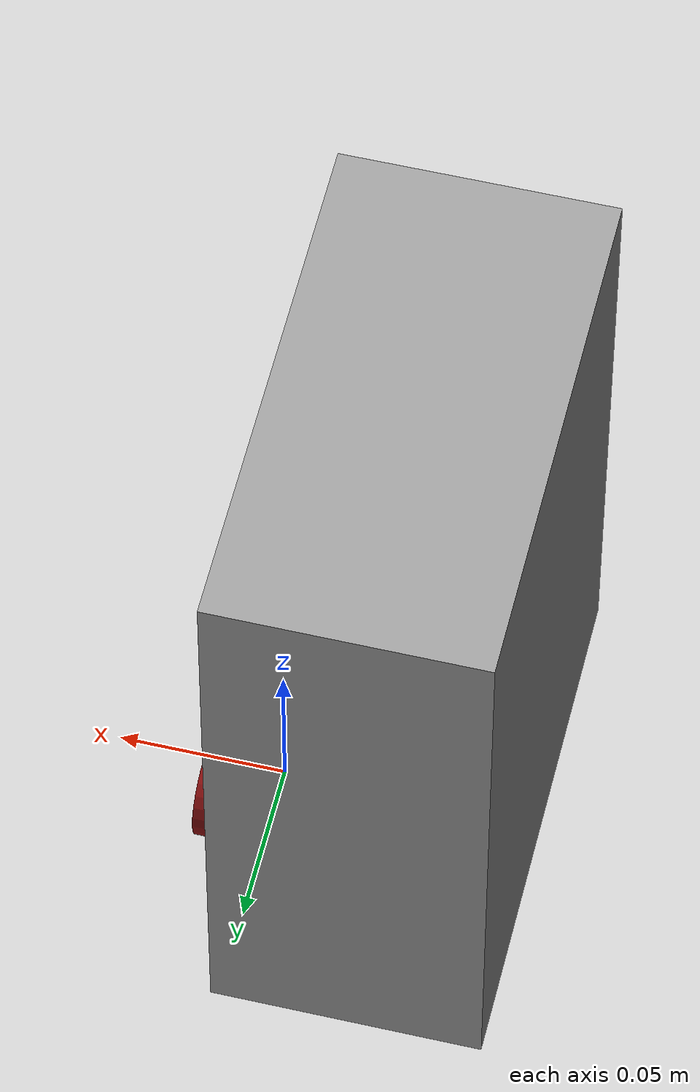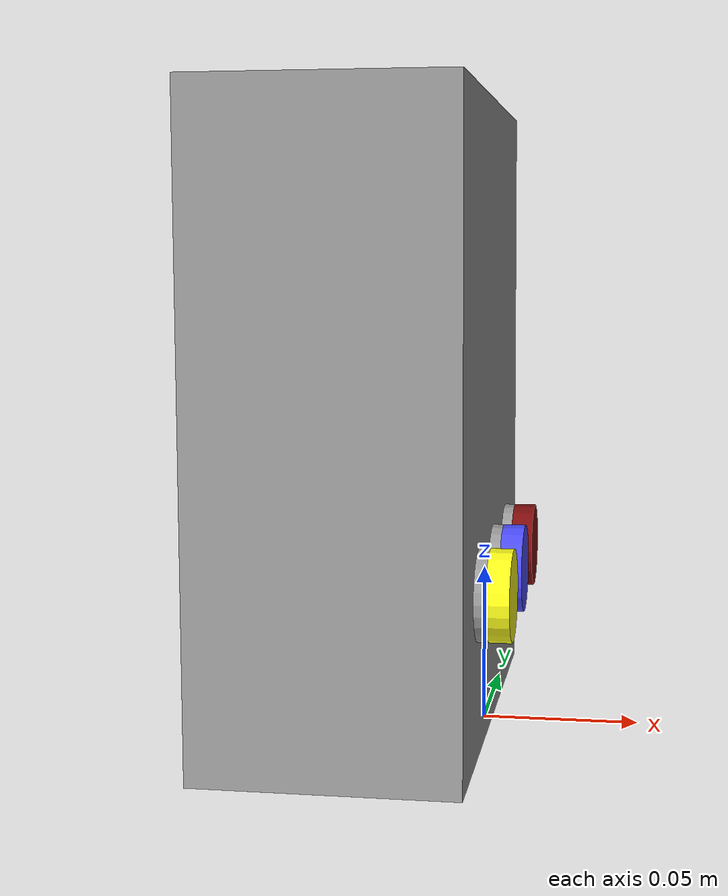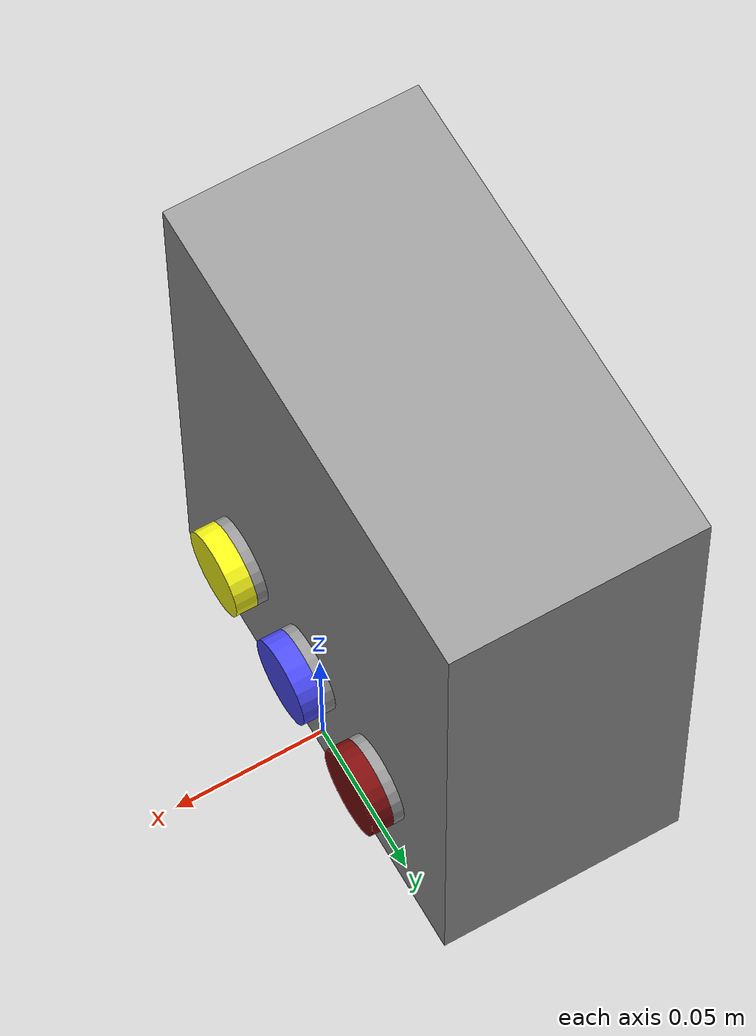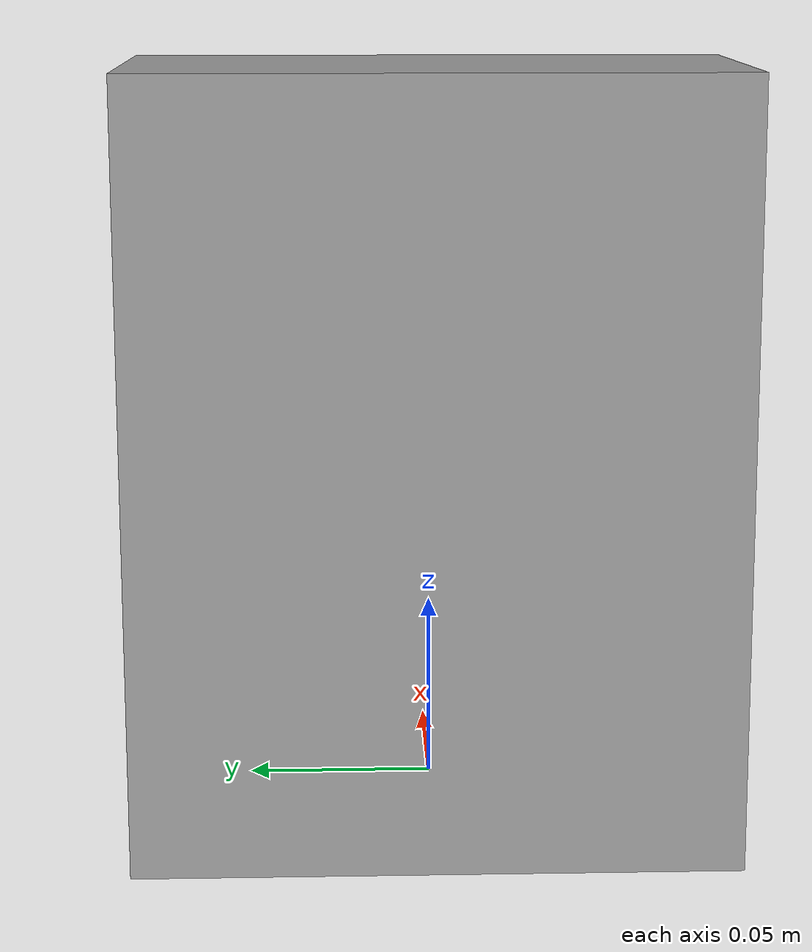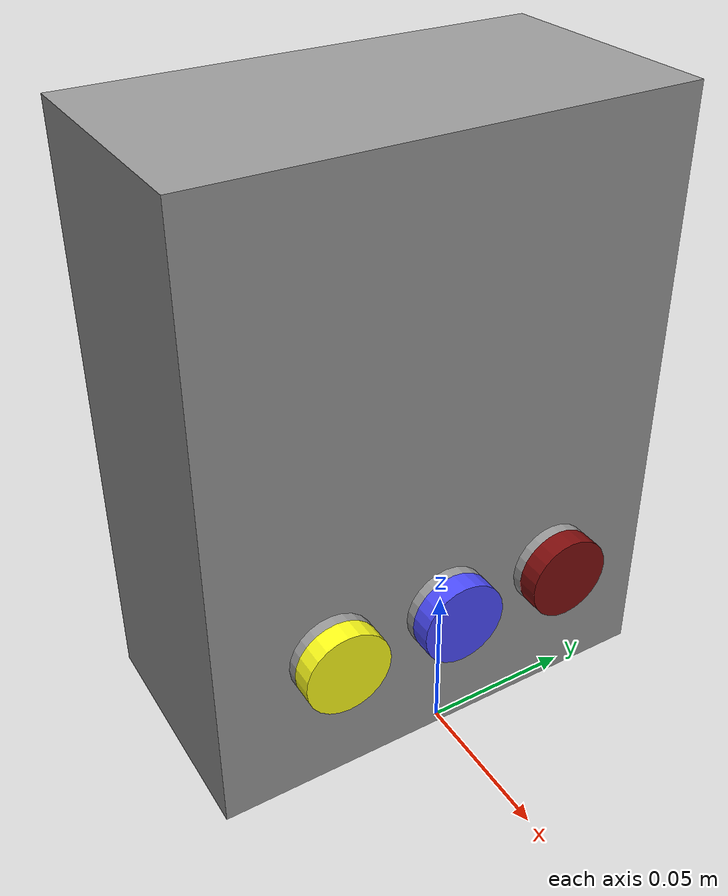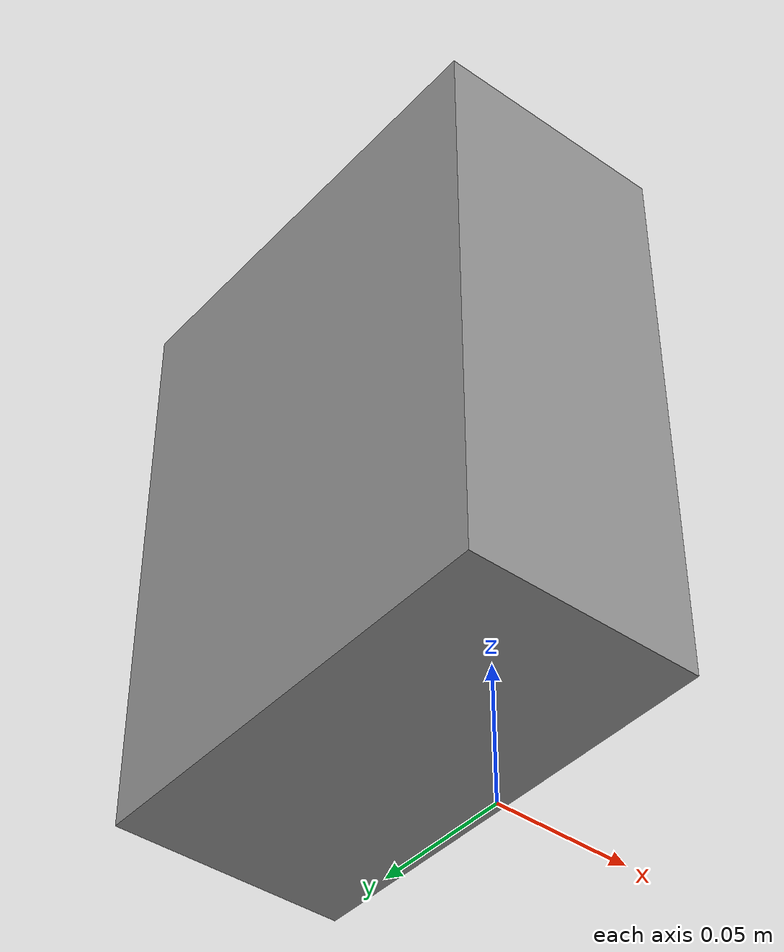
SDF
<?xml version='1.0'?>
<sdf version='1.6'>
  <model name='tc6_sensor_box'>
    <link name='box'>
      <inertial>
        <mass>2.914</mass>
        <inertia>
          <ixx>0.0155474</ixx>
          <ixy>0</ixy>
          <ixz>0</ixz>
          <iyy>0.0112675</iyy>
          <iyz>0</iyz>
          <izz>0.0073882</izz>
        </inertia>
      </inertial>
      <pose frame=''>-0.037286 0 0.1 0 -0 0</pose>
      <visual name='visual'>
        <geometry>
          <box>
            <size>0.08 0.155 0.2</size>
          </box>
        </geometry>
        <material>
          <lighting>1</lighting>
          <script>
            <uri>file://media/materials/scripts/gazebo.material</uri>
            <name>Gazebo/Grey</name>
          </script>
          <shader type='vertex'>
            <normal_map>__default__</normal_map>
          </shader>
          <ambient>0.194 0.187 0.169 1</ambient>
          <diffuse>0.7 0.7 0.7 1</diffuse>
          <specular>0.01 0.01 0.01 1</specular>
          <emissive>0 0 0 1</emissive>
        </material>
        <transparency>0</transparency>
        <cast_shadows>1</cast_shadows>
      </visual>
      <collision name='collision'>
        <geometry>
          <box>
            <size>0.08 0.155 0.2</size>
          </box>
        </geometry>
      </collision>
    </link>
    <link name='pilot_lamp_blue'>
      <inertial>
        <mass>0.0434105</mass>
        <inertia>
          <ixx>9.32e-06</ixx>
          <ixy>0</ixy>
          <ixz>0</ixz>
          <iyy>9.32e-06</iyy>
          <iyz>0</iyz>
          <izz>1.702e-05</izz>
        </inertia>
      </inertial>
      <pose frame=''>0.009714 0 0.05 -3.14159 1.57 -3.14159</pose>
      <visual name='visual'>
        <geometry>
          <cylinder>
            <radius>0.014</radius>
            <length>0.007</length>
          </cylinder>
        </geometry>
        <material>
          <lighting>1</lighting>
          <script>
            <uri>file://media/materials/scripts/gazebo.material</uri>
            <name>Gazebo/Grey</name>
          </script>
          <shader type='vertex'>
            <normal_map>__default__</normal_map>
          </shader>
          <ambient>0 0 1 1</ambient>
          <diffuse>0.3 0.3 1 1</diffuse>
          <specular>0.01 0.01 0.01 1</specular>
          <emissive>0 0 0 1</emissive>
        </material>
        <transparency>0</transparency>
        <cast_shadows>1</cast_shadows>
      </visual>
      <collision name='collision'>
        <geometry>
          <cylinder>
            <radius>0.014</radius>
            <length>0.007</length>
          </cylinder>
        </geometry>
      </collision>
    </link>
    <link name='pilot_lamp_base_0'>
      <inertial>
        <mass>0.0434105</mass>
        <inertia>
          <ixx>9.32e-06</ixx>
          <ixy>0</ixy>
          <ixz>0</ixz>
          <iyy>9.32e-06</iyy>
          <iyz>0</iyz>
          <izz>1.702e-05</izz>
        </inertia>
      </inertial>
      <pose frame=''>0.002714 -0.04 0.05 -3.14159 1.57 -3.14159</pose>
      <visual name='visual'>
        <geometry>
          <cylinder>
            <radius>0.014</radius>
            <length>0.007</length>
          </cylinder>
        </geometry>
        <material>
          <lighting>1</lighting>
          <script>
            <uri>file://media/materials/scripts/gazebo.material</uri>
            <name>Gazebo/Grey</name>
          </script>
          <shader type='vertex'>
            <normal_map>__default__</normal_map>
          </shader>
          <ambient>0 0 0 1</ambient>
          <diffuse>0 0 0 1</diffuse>
          <specular>0 0 0 1</specular>
          <emissive>0 0 0 1</emissive>
        </material>
        <transparency>0</transparency>
        <cast_shadows>1</cast_shadows>
      </visual>
      <collision name='collision'>
        <geometry>
          <cylinder>
            <radius>0.014</radius>
            <length>0.007</length>
          </cylinder>
        </geometry>
      </collision>
    </link>
    <link name='pilot_lamp_yellow'>
      <inertial>
        <mass>0.0434105</mass>
        <inertia>
          <ixx>9.32e-06</ixx>
          <ixy>0</ixy>
          <ixz>0</ixz>
          <iyy>9.32e-06</iyy>
          <iyz>0</iyz>
          <izz>1.702e-05</izz>
        </inertia>
      </inertial>
      <pose frame=''>0.009714 -0.04 0.05 -3.14159 1.57 -3.14159</pose>
      <visual name='visual'>
        <geometry>
          <cylinder>
            <radius>0.014</radius>
            <length>0.007</length>
          </cylinder>
        </geometry>
        <material>
          <lighting>1</lighting>
          <script>
            <uri>file://media/materials/scripts/gazebo.material</uri>
            <name>Gazebo/Grey</name>
          </script>
          <shader type='vertex'>
            <normal_map>__default__</normal_map>
          </shader>
          <ambient>1 1 0.1 1</ambient>
          <diffuse>0.7 0.7 0.7 1</diffuse>
          <specular>0.01 0.01 0.01 1</specular>
          <emissive>0 0 0 1</emissive>
        </material>
        <transparency>0</transparency>
        <cast_shadows>1</cast_shadows>
      </visual>
      <collision name='collision'>
        <geometry>
          <cylinder>
            <radius>0.014</radius>
            <length>0.007</length>
          </cylinder>
        </geometry>
      </collision>
    </link>
    <link name='pilot_lamp_red'>
      <inertial>
        <mass>0.0434105</mass>
        <inertia>
          <ixx>9.32e-06</ixx>
          <ixy>0</ixy>
          <ixz>0</ixz>
          <iyy>9.32e-06</iyy>
          <iyz>0</iyz>
          <izz>1.702e-05</izz>
        </inertia>
      </inertial>
      <pose frame=''>0.009714 0.04 0.05 -3.14159 1.57 -3.14159</pose>
      <visual name='visual'>
        <geometry>
          <cylinder>
            <radius>0.014</radius>
            <length>0.007</length>
          </cylinder>
        </geometry>
        <material>
          <lighting>1</lighting>
          <script>
            <uri>file://media/materials/scripts/gazebo.material</uri>
            <name>Gazebo/Grey</name>
          </script>
          <shader type='vertex'>
            <normal_map>__default__</normal_map>
          </shader>
          <ambient>0.5 0.05 0.05 1</ambient>
          <diffuse>0.3 0.3 0.3 1</diffuse>
          <specular>0.01 0.01 0.01 1</specular>
          <emissive>0 0 0 1</emissive>
        </material>
        <transparency>0</transparency>
        <cast_shadows>1</cast_shadows>
      </visual>
      <collision name='collision'>
        <geometry>
          <cylinder>
            <radius>0.014</radius>
            <length>0.007</length>
          </cylinder>
        </geometry>
      </collision>
    </link>
    <link name='pilot_lamp_base_1'>
      <inertial>
        <mass>0.0434105</mass>
        <inertia>
          <ixx>9.32e-06</ixx>
          <ixy>0</ixy>
          <ixz>0</ixz>
          <iyy>9.32e-06</iyy>
          <iyz>0</iyz>
          <izz>1.702e-05</izz>
        </inertia>
      </inertial>
      <pose frame=''>0.002714 0 0.05 -3.14159 1.57 -3.14159</pose>
      <visual name='visual'>
        <geometry>
          <cylinder>
            <radius>0.014</radius>
            <length>0.007</length>
          </cylinder>
        </geometry>
        <material>
          <lighting>1</lighting>
          <script>
            <uri>file://media/materials/scripts/gazebo.material</uri>
            <name>Gazebo/Grey</name>
          </script>
          <shader type='vertex'>
            <normal_map>__default__</normal_map>
          </shader>
          <ambient>0 0 0 1</ambient>
          <diffuse>0 0 0 1</diffuse>
          <specular>0 0 0 1</specular>
          <emissive>0 0 0 1</emissive>
        </material>
        <transparency>0</transparency>
        <cast_shadows>1</cast_shadows>
      </visual>
      <collision name='collision'>
        <geometry>
          <cylinder>
            <radius>0.014</radius>
            <length>0.007</length>
          </cylinder>
        </geometry>
      </collision>
    </link>
    <link name='pilot_lamp_base_2'>
      <inertial>
        <mass>0.0434105</mass>
        <inertia>
          <ixx>9.32e-06</ixx>
          <ixy>0</ixy>
          <ixz>0</ixz>
          <iyy>9.32e-06</iyy>
          <iyz>0</iyz>
          <izz>1.702e-05</izz>
        </inertia>
      </inertial>
      <pose frame=''>0.002714 0.04 0.05 -3.14159 1.57 -3.14159</pose>
      <visual name='visual'>
        <pose frame=''>0 0 0 0 -0 0</pose>
        <geometry>
          <cylinder>
            <radius>0.014</radius>
            <length>0.007</length>
          </cylinder>
        </geometry>
        <material>
          <lighting>1</lighting>
          <script>
            <uri>file://media/materials/scripts/gazebo.material</uri>
            <name>Gazebo/Grey</name>
          </script>
          <shader type='vertex'>
            <normal_map>__default__</normal_map>
          </shader>
          <ambient>0 0 0 1</ambient>
          <diffuse>0 0 0 1</diffuse>
          <specular>0 0 0 1</specular>
          <emissive>0 0 0 1</emissive>
        </material>
        <transparency>0</transparency>
        <cast_shadows>1</cast_shadows>
      </visual>
      <collision name='collision'>
        <geometry>
          <cylinder>
            <radius>0.014</radius>
            <length>0.007</length>
          </cylinder>
        </geometry>
      </collision>
    </link>
    <static>0</static>
    <allow_auto_disable>1</allow_auto_disable>

    <joint name="lamp_base_0_joint" type="fixed">
      <child>pilot_lamp_base_0</child>
      <parent>box</parent>
    </joint>
    <joint name="lamp_yellow_joint" type="fixed">
      <child>pilot_lamp_yellow</child>
      <parent>pilot_lamp_base_0</parent>
    </joint>
    <joint name="lamp_base_1_joint" type="fixed">
      <child>pilot_lamp_base_1</child>
      <parent>box</parent>
    </joint>
    <joint name="lamp_blue_joint" type="fixed">
      <child>pilot_lamp_blue</child>
      <parent>pilot_lamp_base_1</parent>
    </joint>
    <joint name="lamp_base_2_joint" type="fixed">
      <child>pilot_lamp_base_2</child>
      <parent>box</parent>
    </joint>
    <joint name="lamp_red_joint" type="fixed">
      <child>pilot_lamp_red</child>
      <parent>pilot_lamp_base_2</parent>
    </joint>
  </model>
</sdf>
